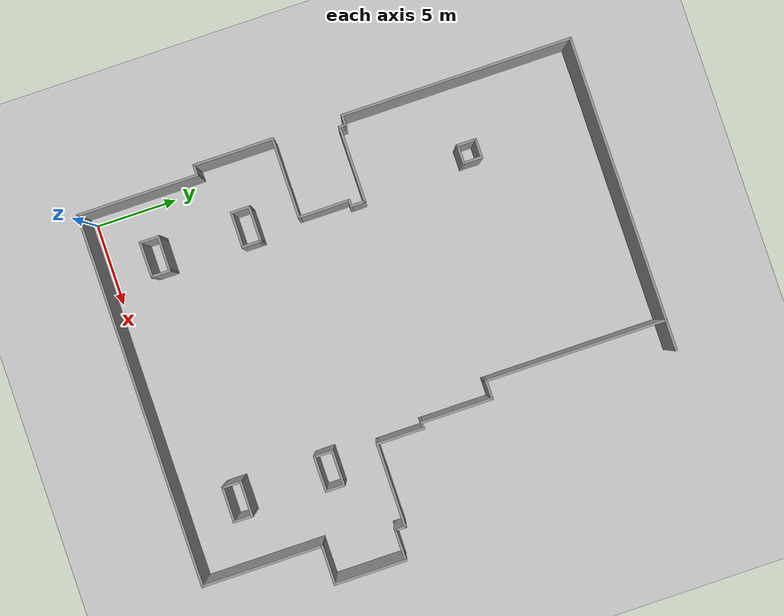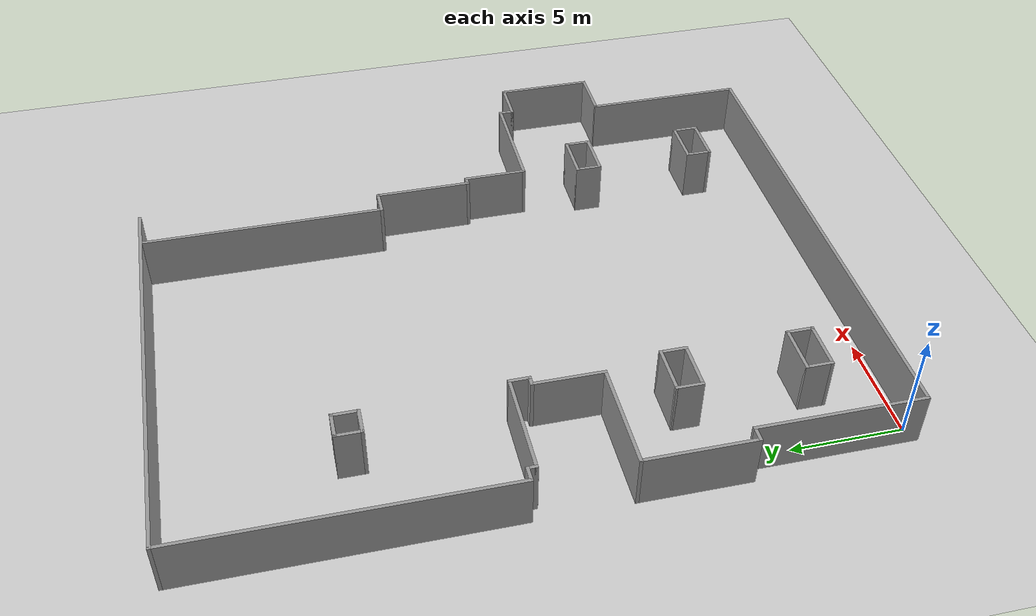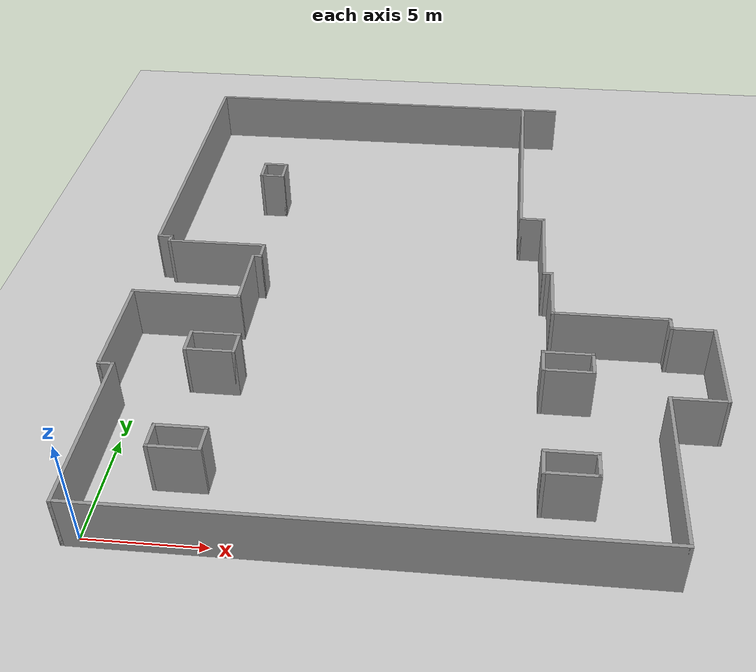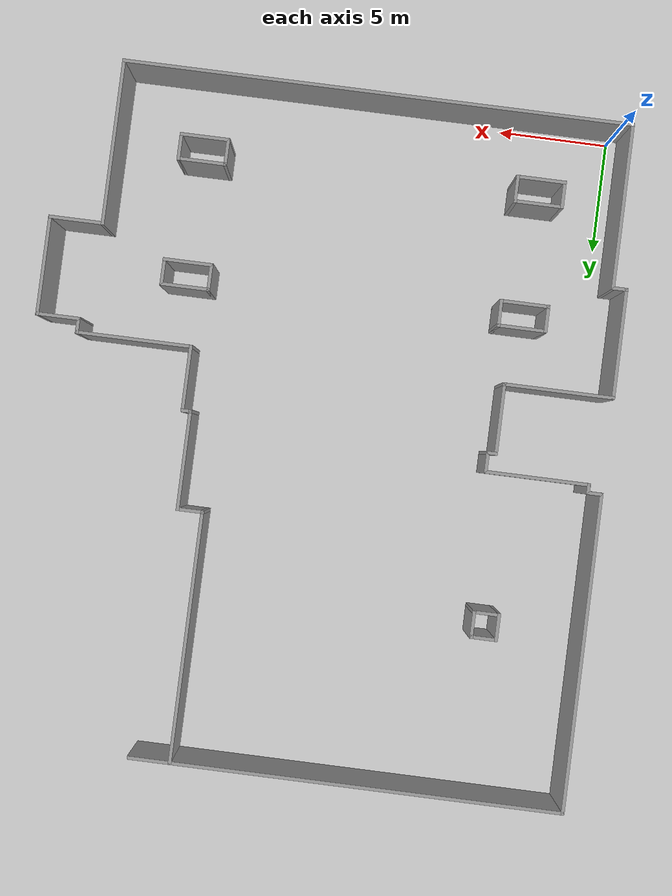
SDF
<sdf version="1.7">
 <world name="default">
  <light name="sun" type="directional">
   <pose>0 0 10 0 -0 0</pose>
   <diffuse>0.8 0.8 0.8 1</diffuse>
   <specular>0.2 0.2 0.2 1</specular>
   <attenuation>
    <range>1000</range>
    <constant>0.9</constant>
    <linear>0.01</linear>
    <quadratic>0.001</quadratic>
   </attenuation>
   <direction>-0.5 0.1 -0.9</direction>
   <spot><inner_angle>0</inner_angle><outer_angle>0</outer_angle><falloff>0</falloff></spot>
  </light>
  <model name="ground_plane">
   <pose>25 15 0 0 -0 0</pose>
   <static>1</static>
   <link name="link">
    <collision name="collision">
     <geometry><plane><normal>0 0 1</normal><size>100 100</size></plane></geometry>
     <surface>
      <contact><collide_bitmask>65535</collide_bitmask></contact>
      <friction><ode><mu>100</mu><mu2>50</mu2></ode></friction>
     </surface>
    </collision>
    <visual name="visual">
     <cast_shadows>0</cast_shadows>
     <geometry><plane><normal>0 0 1</normal><size>100 100</size></plane></geometry>
     <material>
      <script><uri>file://media/materials/scripts/gazebo.material</uri><name>Gazebo/Grey</name></script>
     </material>
    </visual>
   </link>
  </model>
  <gravity>0 0 -9.8</gravity>
  <magnetic_field>6e-06 2.3e-05 -4.2e-05</magnetic_field>
  <atmosphere type="adiabatic"/>
  <physics type="ode">
   <max_step_size>0.001</max_step_size>
   <real_time_factor>1</real_time_factor>
   <real_time_update_rate>1000</real_time_update_rate>
  </physics>
  <scene><ambient>0.4 0.4 0.4 1</ambient><background>0.7 0.7 0.7 1</background><shadows>1</shadows></scene>
  <spherical_coordinates>
   <surface_model>EARTH_WGS84</surface_model>
   <latitude_deg>0</latitude_deg>
   <longitude_deg>0</longitude_deg>
   <elevation>0</elevation>
   <heading_deg>0</heading_deg>
  </spherical_coordinates>
  <model name="hall">
   <pose>25 15 0 0 -0 0</pose>
   <link name="Wall_19">
    <collision name="Wall_19_Collision">
     <geometry><box><size>0.75 0.15 2.5</size></box></geometry>
     <pose>0 0 1.25 0 -0 0</pose>
    </collision>
    <visual name="Wall_19_Visual">
     <pose>0 0 1.25 0 -0 0</pose>
     <geometry><box><size>0.75 0.15 2.5</size></box></geometry>
     <material>
      <script><uri>file://media/materials/scripts/gazebo.material</uri><name>Gazebo/Grey</name></script>
      <ambient>1 1 1 1</ambient>
     </material>
     <meta><layer>0</layer></meta>
    </visual>
    <pose>-25.8583 1.19999 0 0 -0 0</pose>
   </link>
   <link name="Wall_22">
    <collision name="Wall_22_Collision">
     <geometry><box><size>0.5 0.15 2.5</size></box></geometry>
     <pose>0 0 1.25 0 -0 0</pose>
    </collision>
    <visual name="Wall_22_Visual">
     <pose>0 0 1.25 0 -0 0</pose>
     <geometry><box><size>0.5 0.15 2.5</size></box></geometry>
     <material>
      <script><uri>file://media/materials/scripts/gazebo.material</uri><name>Gazebo/Grey</name></script>
      <ambient>1 1 1 1</ambient>
     </material>
     <meta><layer>0</layer></meta>
    </visual>
    <pose>-25.5583 1.02499 0 0 -0 -1.5708</pose>
   </link>
   <link name="Wall_28">
    <collision name="Wall_28_Collision">
     <geometry><box><size>4.75 0.15 2.5</size></box></geometry>
     <pose>0 0 1.25 0 -0 0</pose>
    </collision>
    <visual name="Wall_28_Visual">
     <pose>0 0 1.25 0 -0 0</pose>
     <geometry><box><size>4.75 0.15 2.5</size></box></geometry>
     <material>
      <script><uri>file://media/materials/scripts/gazebo.material</uri><name>Gazebo/Grey</name></script>
      <ambient>1 1 1 1</ambient>
     </material>
     <meta><layer>0</layer></meta>
    </visual>
    <pose>-23.2583 0.849991 0 0 -0 0</pose>
   </link>
   <link name="Wall_29">
    <collision name="Wall_29_Collision">
     <geometry><box><size>1 0.15 2.5</size></box></geometry>
     <pose>0 0 1.25 0 -0 0</pose>
    </collision>
    <visual name="Wall_29_Visual">
     <pose>0 0 1.25 0 -0 0</pose>
     <geometry><box><size>1 0.15 2.5</size></box></geometry>
     <material>
      <script><uri>file://media/materials/scripts/gazebo.material</uri><name>Gazebo/Grey</name></script>
      <ambient>1 1 1 1</ambient>
     </material>
     <meta><layer>0</layer></meta>
    </visual>
    <pose>-20.9583 0.424992 0 0 -0 -1.5708</pose>
   </link>
   <link name="Wall_30">
    <collision name="Wall_30_Collision">
     <geometry><box><size>0.5 0.15 2.5</size></box></geometry>
     <pose>0 0 1.25 0 -0 0</pose>
    </collision>
    <visual name="Wall_30_Visual">
     <pose>0 0 1.25 0 -0 0</pose>
     <geometry><box><size>0.5 0.15 2.5</size></box></geometry>
     <material>
      <script><uri>file://media/materials/scripts/gazebo.material</uri><name>Gazebo/Grey</name></script>
      <ambient>1 1 1 1</ambient>
     </material>
     <meta><layer>0</layer></meta>
    </visual>
    <pose>-21.1333 -8e-06 0 0 -0 3.14159</pose>
   </link>
   <link name="Wall_32">
    <collision name="Wall_32_Collision">
     <geometry><box><size>3.25 0.15 2.5</size></box></geometry>
     <pose>0 0 1.25 0 -0 0</pose>
    </collision>
    <visual name="Wall_32_Visual">
     <pose>0 0 1.25 0 -0 0</pose>
     <geometry><box><size>3.25 0.15 2.5</size></box></geometry>
     <material>
      <script><uri>file://media/materials/scripts/gazebo.material</uri><name>Gazebo/Grey</name></script>
      <ambient>1 1 1 1</ambient>
     </material>
     <meta><layer>0</layer></meta>
    </visual>
    <pose>-21.3083 -1.55001 0 0 -0 -1.5708</pose>
   </link>
   <link name="Wall_33">
    <collision name="Wall_33_Collision">
     <geometry><box><size>5 0.15 2.5</size></box></geometry>
     <pose>0 0 1.25 0 -0 0</pose>
    </collision>
    <visual name="Wall_33_Visual">
     <pose>0 0 1.25 0 -0 0</pose>
     <geometry><box><size>5 0.15 2.5</size></box></geometry>
     <material>
      <script><uri>file://media/materials/scripts/gazebo.material</uri><name>Gazebo/Grey</name></script>
      <ambient>1 1 1 1</ambient>
     </material>
     <meta><layer>0</layer></meta>
    </visual>
    <pose>-23.7333 -3.10001 0 0 -0 3.14159</pose>
   </link>
   <link name="Wall_35">
    <collision name="Wall_35_Collision">
     <geometry><box><size>5 0.15 2.5</size></box></geometry>
     <pose>0 0 1.25 0 -0 0</pose>
    </collision>
    <visual name="Wall_35_Visual">
     <pose>0 0 1.25 0 -0 0</pose>
     <geometry><box><size>5 0.15 2.5</size></box></geometry>
     <material>
      <script><uri>file://media/materials/scripts/gazebo.material</uri><name>Gazebo/Grey</name></script>
      <ambient>1 1 1 1</ambient>
     </material>
     <meta><layer>0</layer></meta>
    </visual>
    <pose>-26.1583 -5.52501 0 0 -0 -1.5708</pose>
   </link>
   <link name="Wall_36">
    <collision name="Wall_36_Collision">
     <geometry><box><size>0.75 0.15 2.5</size></box></geometry>
     <pose>0 0 1.25 0 -0 0</pose>
    </collision>
    <visual name="Wall_36_Visual">
     <pose>0 0 1.25 0 -0 0</pose>
     <geometry><box><size>0.75 0.15 2.5</size></box></geometry>
     <material>
      <script><uri>file://media/materials/scripts/gazebo.material</uri><name>Gazebo/Grey</name></script>
      <ambient>1 1 1 1</ambient>
     </material>
     <meta><layer>0</layer></meta>
    </visual>
    <pose>-25.8583 -7.95001 0 0 -0 0</pose>
   </link>
   <link name="Wall_38">
    <collision name="Wall_38_Collision">
     <geometry><box><size>7.5 0.15 2.5</size></box></geometry>
     <pose>0 0 1.25 0 -0 0</pose>
    </collision>
    <visual name="Wall_38_Visual">
     <pose>0 0 1.25 0 -0 0</pose>
     <geometry><box><size>7.5 0.15 2.5</size></box></geometry>
     <material>
      <script><uri>file://media/materials/scripts/gazebo.material</uri><name>Gazebo/Grey</name></script>
      <ambient>1 1 1 1</ambient>
     </material>
     <meta><layer>0</layer></meta>
    </visual>
    <pose>-25.5583 -11.625 0 0 -0 -1.5708</pose>
   </link>
   <link name="Wall_40">
    <collision name="Wall_40_Collision">
     <geometry><box><size>23 0.15 2.5</size></box></geometry>
     <pose>0 0 1.25 0 -0 0</pose>
    </collision>
    <visual name="Wall_40_Visual">
     <pose>0 0 1.25 0 -0 0</pose>
     <geometry><box><size>23 0.15 2.5</size></box></geometry>
     <material>
      <script><uri>file://media/materials/scripts/gazebo.material</uri><name>Gazebo/Grey</name></script>
      <ambient>1 1 1 1</ambient>
     </material>
     <meta><layer>0</layer></meta>
    </visual>
    <pose>-14.1333 -15.3 0 0 -0 0</pose>
   </link>
   <link name="Wall_41">
    <collision name="Wall_41_Collision">
     <geometry><box><size>7.5 0.15 2.5</size></box></geometry>
     <pose>0 0 1.25 0 -0 0</pose>
    </collision>
    <visual name="Wall_41_Visual">
     <pose>0 0 1.25 0 -0 0</pose>
     <geometry><box><size>7.5 0.15 2.5</size></box></geometry>
     <material>
      <script><uri>file://media/materials/scripts/gazebo.material</uri><name>Gazebo/Grey</name></script>
      <ambient>1 1 1 1</ambient>
     </material>
     <meta><layer>0</layer></meta>
    </visual>
    <pose>-2.70828 -11.625 0 0 -0 1.5708</pose>
   </link>
   <link name="Wall_44">
    <collision name="Wall_44_Collision">
     <geometry><box><size>2.5 0.15 2.5</size></box></geometry>
     <pose>0 0 1.25 0 -0 0</pose>
    </collision>
    <visual name="Wall_44_Visual">
     <pose>0 0 1.25 0 -0 0</pose>
     <geometry><box><size>2.5 0.15 2.5</size></box></geometry>
     <material>
      <script><uri>file://media/materials/scripts/gazebo.material</uri><name>Gazebo/Grey</name></script>
      <ambient>1 1 1 1</ambient>
     </material>
     <meta><layer>0</layer></meta>
    </visual>
    <pose>-1.53328 -7.95001 0 0 -0 0</pose>
   </link>
   <link name="Wall_45">
    <collision name="Wall_45_Collision">
     <geometry><box><size>4.5 0.15 2.5</size></box></geometry>
     <pose>0 0 1.25 0 -0 0</pose>
    </collision>
    <visual name="Wall_45_Visual">
     <pose>0 0 1.25 0 -0 0</pose>
     <geometry><box><size>4.5 0.15 2.5</size></box></geometry>
     <material>
      <script><uri>file://media/materials/scripts/gazebo.material</uri><name>Gazebo/Grey</name></script>
      <ambient>1 1 1 1</ambient>
     </material>
     <meta><layer>0</layer></meta>
    </visual>
    <pose>-0.358276 -5.77501 0 0 -0 1.5708</pose>
   </link>
   <link name="Wall_46">
    <collision name="Wall_46_Collision">
     <geometry><box><size>2 0.15 2.5</size></box></geometry>
     <pose>0 0 1.25 0 -0 0</pose>
    </collision>
    <visual name="Wall_46_Visual">
     <pose>0 0 1.25 0 -0 0</pose>
     <geometry><box><size>2 0.15 2.5</size></box></geometry>
     <material>
      <script><uri>file://media/materials/scripts/gazebo.material</uri><name>Gazebo/Grey</name></script>
      <ambient>1 1 1 1</ambient>
     </material>
     <meta><layer>0</layer></meta>
    </visual>
    <pose>-1.28328 -3.60001 0 0 -0 3.14159</pose>
   </link>
   <link name="Wall_47">
    <collision name="Wall_47_Collision">
     <geometry><box><size>0.75 0.15 2.5</size></box></geometry>
     <pose>0 0 1.25 0 -0 0</pose>
    </collision>
    <visual name="Wall_47_Visual">
     <pose>0 0 1.25 0 -0 0</pose>
     <geometry><box><size>0.75 0.15 2.5</size></box></geometry>
     <material>
      <script><uri>file://media/materials/scripts/gazebo.material</uri><name>Gazebo/Grey</name></script>
      <ambient>1 1 1 1</ambient>
     </material>
     <meta><layer>0</layer></meta>
    </visual>
    <pose>-2.20828 -3.30001 0 0 -0 1.5708</pose>
   </link>
   <link name="Wall_48">
    <collision name="Wall_48_Collision">
     <geometry><box><size>5.25 0.15 2.5</size></box></geometry>
     <pose>0 0 1.25 0 -0 0</pose>
    </collision>
    <visual name="Wall_48_Visual">
     <pose>0 0 1.25 0 -0 0</pose>
     <geometry><box><size>5.25 0.15 2.5</size></box></geometry>
     <material>
      <script><uri>file://media/materials/scripts/gazebo.material</uri><name>Gazebo/Grey</name></script>
      <ambient>1 1 1 1</ambient>
     </material>
     <meta><layer>0</layer></meta>
    </visual>
    <pose>-4.75828 -3.00001 0 0 -0 3.14159</pose>
   </link>
   <link name="Wall_50">
    <collision name="Wall_50_Collision">
     <geometry><box><size>3 0.15 2.5</size></box></geometry>
     <pose>0 0 1.25 0 -0 0</pose>
    </collision>
    <visual name="Wall_50_Visual">
     <pose>0 0 1.25 0 -0 0</pose>
     <geometry><box><size>3 0.15 2.5</size></box></geometry>
     <material>
      <script><uri>file://media/materials/scripts/gazebo.material</uri><name>Gazebo/Grey</name></script>
      <ambient>1 1 1 1</ambient>
     </material>
     <meta><layer>0</layer></meta>
    </visual>
    <pose>-7.30828 -1.57501 0 0 -0 1.5708</pose>
   </link>
   <link name="Wall_51">
    <collision name="Wall_51_Collision">
     <geometry><box><size>0.5 0.15 2.5</size></box></geometry>
     <pose>0 0 1.25 0 -0 0</pose>
    </collision>
    <visual name="Wall_51_Visual">
     <pose>0 0 1.25 0 -0 0</pose>
     <geometry><box><size>0.5 0.15 2.5</size></box></geometry>
     <material>
      <script><uri>file://media/materials/scripts/gazebo.material</uri><name>Gazebo/Grey</name></script>
      <ambient>1 1 1 1</ambient>
     </material>
     <meta><layer>0</layer></meta>
    </visual>
    <pose>-7.48328 -0.150009 0 0 -0 3.14159</pose>
   </link>
   <link name="Wall_52">
    <collision name="Wall_52_Collision">
     <geometry><box><size>4.5 0.15 2.5</size></box></geometry>
     <pose>0 0 1.25 0 -0 0</pose>
    </collision>
    <visual name="Wall_52_Visual">
     <pose>0 0 1.25 0 -0 0</pose>
     <geometry><box><size>4.5 0.15 2.5</size></box></geometry>
     <material>
      <script><uri>file://media/materials/scripts/gazebo.material</uri><name>Gazebo/Grey</name></script>
      <ambient>1 1 1 1</ambient>
     </material>
     <meta><layer>0</layer></meta>
    </visual>
    <pose>-7.65828 2.02499 0 0 -0 1.5708</pose>
   </link>
   <link name="Wall_53">
    <collision name="Wall_53_Collision">
     <geometry><box><size>1.25 0.15 2.5</size></box></geometry>
     <pose>0 0 1.25 0 -0 0</pose>
    </collision>
    <visual name="Wall_53_Visual">
     <pose>0 0 1.25 0 -0 0</pose>
     <geometry><box><size>1.25 0.15 2.5</size></box></geometry>
     <material>
      <script><uri>file://media/materials/scripts/gazebo.material</uri><name>Gazebo/Grey</name></script>
      <ambient>1 1 1 1</ambient>
     </material>
     <meta><layer>0</layer></meta>
    </visual>
    <pose>-8.20828 4.19999 0 0 -0 3.14159</pose>
   </link>
   <link name="Wall_55">
    <collision name="Wall_55_Collision">
     <geometry><box><size>11.25 0.15 2.5</size></box></geometry>
     <pose>0 0 1.25 0 -0 0</pose>
    </collision>
    <visual name="Wall_55_Visual">
     <pose>0 0 1.25 0 -0 0</pose>
     <geometry><box><size>11.25 0.15 2.5</size></box></geometry>
     <material>
      <script><uri>file://media/materials/scripts/gazebo.material</uri><name>Gazebo/Grey</name></script>
      <ambient>1 1 1 1</ambient>
     </material>
     <meta><layer>0</layer></meta>
    </visual>
    <pose>-8.75828 9.74999 0 0 -0 1.5708</pose>
   </link>
   <link name="Wall_58">
    <collision name="Wall_58_Collision">
     <geometry><box><size>2.25 0.15 2.5</size></box></geometry>
     <pose>0 0 1.25 0 -0 0</pose>
    </collision>
    <visual name="Wall_58_Visual">
     <pose>0 0 1.25 0 -0 0</pose>
     <geometry><box><size>2.25 0.15 2.5</size></box></geometry>
     <material>
      <script><uri>file://media/materials/scripts/gazebo.material</uri><name>Gazebo/Grey</name></script>
      <ambient>1 1 1 1</ambient>
     </material>
     <meta><layer>0</layer></meta>
    </visual>
    <pose>-21.769 -5.66098 0 0 -0 0</pose>
   </link>
   <link name="Wall_6">
    <collision name="Wall_6_Collision">
     <geometry><box><size>19.3662 0.15 2.5</size></box></geometry>
     <pose>0 0 1.25 0 -0 0</pose>
    </collision>
    <visual name="Wall_6_Visual">
     <pose>0 0 1.25 0 -0 0</pose>
     <geometry><box><size>19.3662 0.15 2.5</size></box></geometry>
     <material>
      <script><uri>file://media/materials/scripts/gazebo.material</uri><name>Gazebo/Grey</name></script>
      <ambient>1 1 1 1</ambient>
     </material>
     <meta><layer>0</layer></meta>
    </visual>
    <pose>-16.5502 15.298 0 0 -0 -0.000212</pose>
   </link>
   <link name="Wall_60">
    <collision name="Wall_60_Collision">
     <geometry><box><size>1.25 0.15 2.5</size></box></geometry>
     <pose>0 0 1.25 0 -0 0</pose>
    </collision>
    <visual name="Wall_60_Visual">
     <pose>0 0 1.25 0 -0 0</pose>
     <geometry><box><size>1.25 0.15 2.5</size></box></geometry>
     <material>
      <script><uri>file://media/materials/scripts/gazebo.material</uri><name>Gazebo/Grey</name></script>
      <ambient>1 1 1 1</ambient>
     </material>
     <meta><layer>0</layer></meta>
    </visual>
    <pose>-22.819 -6.21098 0 0 -0 -1.5708</pose>
   </link>
   <link name="Wall_61">
    <collision name="Wall_61_Collision">
     <geometry><box><size>2.25 0.15 2.5</size></box></geometry>
     <pose>0 0 1.25 0 -0 0</pose>
    </collision>
    <visual name="Wall_61_Visual">
     <pose>0 0 1.25 0 -0 0</pose>
     <geometry><box><size>2.25 0.15 2.5</size></box></geometry>
     <material>
      <script><uri>file://media/materials/scripts/gazebo.material</uri><name>Gazebo/Grey</name></script>
      <ambient>1 1 1 1</ambient>
     </material>
     <meta><layer>0</layer></meta>
    </visual>
    <pose>-21.769 -6.76098 0 0 -0 0</pose>
   </link>
   <link name="Wall_62">
    <collision name="Wall_62_Collision">
     <geometry><box><size>1.25 0.15 2.5</size></box></geometry>
     <pose>0 0 1.25 0 -0 0</pose>
    </collision>
    <visual name="Wall_62_Visual">
     <pose>0 0 1.25 0 -0 0</pose>
     <geometry><box><size>1.25 0.15 2.5</size></box></geometry>
     <material>
      <script><uri>file://media/materials/scripts/gazebo.material</uri><name>Gazebo/Grey</name></script>
      <ambient>1 1 1 1</ambient>
     </material>
     <meta><layer>0</layer></meta>
    </visual>
    <pose>-20.719 -6.21098 0 0 -0 1.5708</pose>
   </link>
   <link name="Wall_64">
    <collision name="Wall_64_Collision">
     <geometry><box><size>2.25 0.15 2.5</size></box></geometry>
     <pose>0 0 1.25 0 -0 0</pose>
    </collision>
    <visual name="Wall_64_Visual">
     <pose>0 0 1.25 0 -0 0</pose>
     <geometry><box><size>2.25 0.15 2.5</size></box></geometry>
     <material>
      <script><uri>file://media/materials/scripts/gazebo.material</uri><name>Gazebo/Grey</name></script>
      <ambient>1 1 1 1</ambient>
     </material>
     <meta><layer>0</layer></meta>
    </visual>
    <pose>-21.8198 -11.2515 0 0 -0 0</pose>
   </link>
   <link name="Wall_65">
    <collision name="Wall_65_Collision">
     <geometry><box><size>1.25 0.15 2.5</size></box></geometry>
     <pose>0 0 1.25 0 -0 0</pose>
    </collision>
    <visual name="Wall_65_Visual">
     <pose>0 0 1.25 0 -0 0</pose>
     <geometry><box><size>1.25 0.15 2.5</size></box></geometry>
     <material>
      <script><uri>file://media/materials/scripts/gazebo.material</uri><name>Gazebo/Grey</name></script>
      <ambient>1 1 1 1</ambient>
     </material>
     <meta><layer>0</layer></meta>
    </visual>
    <pose>-20.7698 -11.8015 0 0 -0 -1.5708</pose>
   </link>
   <link name="Wall_66">
    <collision name="Wall_66_Collision">
     <geometry><box><size>2.25 0.15 2.5</size></box></geometry>
     <pose>0 0 1.25 0 -0 0</pose>
    </collision>
    <visual name="Wall_66_Visual">
     <pose>0 0 1.25 0 -0 0</pose>
     <geometry><box><size>2.25 0.15 2.5</size></box></geometry>
     <material>
      <script><uri>file://media/materials/scripts/gazebo.material</uri><name>Gazebo/Grey</name></script>
      <ambient>1 1 1 1</ambient>
     </material>
     <meta><layer>0</layer></meta>
    </visual>
    <pose>-21.8198 -12.3515 0 0 -0 3.14159</pose>
   </link>
   <link name="Wall_67">
    <collision name="Wall_67_Collision">
     <geometry><box><size>1.25 0.15 2.5</size></box></geometry>
     <pose>0 0 1.25 0 -0 0</pose>
    </collision>
    <visual name="Wall_67_Visual">
     <pose>0 0 1.25 0 -0 0</pose>
     <geometry><box><size>1.25 0.15 2.5</size></box></geometry>
     <material>
      <script><uri>file://media/materials/scripts/gazebo.material</uri><name>Gazebo/Grey</name></script>
      <ambient>1 1 1 1</ambient>
     </material>
     <meta><layer>0</layer></meta>
    </visual>
    <pose>-22.8698 -11.8015 0 0 -0 1.5708</pose>
   </link>
   <link name="Wall_69">
    <collision name="Wall_69_Collision">
     <geometry><box><size>2.25 0.15 2.5</size></box></geometry>
     <pose>0 0 1.25 0 -0 0</pose>
    </collision>
    <visual name="Wall_69_Visual">
     <pose>0 0 1.25 0 -0 0</pose>
     <geometry><box><size>2.25 0.15 2.5</size></box></geometry>
     <material>
      <script><uri>file://media/materials/scripts/gazebo.material</uri><name>Gazebo/Grey</name></script>
      <ambient>1 1 1 1</ambient>
     </material>
     <meta><layer>0</layer></meta>
    </visual>
    <pose>-6.72553 -11.2515 0 0 -0 0</pose>
   </link>
   <link name="Wall_70">
    <collision name="Wall_70_Collision">
     <geometry><box><size>1.25 0.15 2.5</size></box></geometry>
     <pose>0 0 1.25 0 -0 0</pose>
    </collision>
    <visual name="Wall_70_Visual">
     <pose>0 0 1.25 0 -0 0</pose>
     <geometry><box><size>1.25 0.15 2.5</size></box></geometry>
     <material>
      <script><uri>file://media/materials/scripts/gazebo.material</uri><name>Gazebo/Grey</name></script>
      <ambient>1 1 1 1</ambient>
     </material>
     <meta><layer>0</layer></meta>
    </visual>
    <pose>-5.67553 -11.8015 0 0 -0 -1.5708</pose>
   </link>
   <link name="Wall_71">
    <collision name="Wall_71_Collision">
     <geometry><box><size>2.25 0.15 2.5</size></box></geometry>
     <pose>0 0 1.25 0 -0 0</pose>
    </collision>
    <visual name="Wall_71_Visual">
     <pose>0 0 1.25 0 -0 0</pose>
     <geometry><box><size>2.25 0.15 2.5</size></box></geometry>
     <material>
      <script><uri>file://media/materials/scripts/gazebo.material</uri><name>Gazebo/Grey</name></script>
      <ambient>1 1 1 1</ambient>
     </material>
     <meta><layer>0</layer></meta>
    </visual>
    <pose>-6.72553 -12.3515 0 0 -0 3.14159</pose>
   </link>
   <link name="Wall_72">
    <collision name="Wall_72_Collision">
     <geometry><box><size>1.25 0.15 2.5</size></box></geometry>
     <pose>0 0 1.25 0 -0 0</pose>
    </collision>
    <visual name="Wall_72_Visual">
     <pose>0 0 1.25 0 -0 0</pose>
     <geometry><box><size>1.25 0.15 2.5</size></box></geometry>
     <material>
      <script><uri>file://media/materials/scripts/gazebo.material</uri><name>Gazebo/Grey</name></script>
      <ambient>1 1 1 1</ambient>
     </material>
     <meta><layer>0</layer></meta>
    </visual>
    <pose>-7.77553 -11.8015 0 0 -0 1.5708</pose>
   </link>
   <link name="Wall_74">
    <collision name="Wall_74_Collision">
     <geometry><box><size>2.25 0.15 2.5</size></box></geometry>
     <pose>0 0 1.25 0 -0 0</pose>
    </collision>
    <visual name="Wall_74_Visual">
     <pose>0 0 1.25 0 -0 0</pose>
     <geometry><box><size>2.25 0.15 2.5</size></box></geometry>
     <material>
      <script><uri>file://media/materials/scripts/gazebo.material</uri><name>Gazebo/Grey</name></script>
      <ambient>1 1 1 1</ambient>
     </material>
     <meta><layer>0</layer></meta>
    </visual>
    <pose>-6.70011 -5.61015 0 0 -0 0</pose>
   </link>
   <link name="Wall_75">
    <collision name="Wall_75_Collision">
     <geometry><box><size>1.25 0.15 2.5</size></box></geometry>
     <pose>0 0 1.25 0 -0 0</pose>
    </collision>
    <visual name="Wall_75_Visual">
     <pose>0 0 1.25 0 -0 0</pose>
     <geometry><box><size>1.25 0.15 2.5</size></box></geometry>
     <material>
      <script><uri>file://media/materials/scripts/gazebo.material</uri><name>Gazebo/Grey</name></script>
      <ambient>1 1 1 1</ambient>
     </material>
     <meta><layer>0</layer></meta>
    </visual>
    <pose>-5.65011 -6.16015 0 0 -0 -1.5708</pose>
   </link>
   <link name="Wall_76">
    <collision name="Wall_76_Collision">
     <geometry><box><size>2.25 0.15 2.5</size></box></geometry>
     <pose>0 0 1.25 0 -0 0</pose>
    </collision>
    <visual name="Wall_76_Visual">
     <pose>0 0 1.25 0 -0 0</pose>
     <geometry><box><size>2.25 0.15 2.5</size></box></geometry>
     <material>
      <script><uri>file://media/materials/scripts/gazebo.material</uri><name>Gazebo/Grey</name></script>
      <ambient>1 1 1 1</ambient>
     </material>
     <meta><layer>0</layer></meta>
    </visual>
    <pose>-6.70011 -6.71015 0 0 -0 3.14159</pose>
   </link>
   <link name="Wall_77">
    <collision name="Wall_77_Collision">
     <geometry><box><size>1.25 0.15 2.5</size></box></geometry>
     <pose>0 0 1.25 0 -0 0</pose>
    </collision>
    <visual name="Wall_77_Visual">
     <pose>0 0 1.25 0 -0 0</pose>
     <geometry><box><size>1.25 0.15 2.5</size></box></geometry>
     <material>
      <script><uri>file://media/materials/scripts/gazebo.material</uri><name>Gazebo/Grey</name></script>
      <ambient>1 1 1 1</ambient>
     </material>
     <meta><layer>0</layer></meta>
    </visual>
    <pose>-7.75012 -6.16015 0 0 -0 1.5708</pose>
   </link>
   <link name="Wall_79">
    <collision name="Wall_79_Collision">
     <geometry><box><size>1.25 0.15 2.5</size></box></geometry>
     <pose>0 0 1.25 0 -0 0</pose>
    </collision>
    <visual name="Wall_79_Visual">
     <pose>0 0 1.25 0 -0 0</pose>
     <geometry><box><size>1.25 0.15 2.5</size></box></geometry>
     <material>
      <script><uri>file://media/materials/scripts/gazebo.material</uri><name>Gazebo/Grey</name></script>
      <ambient>1 1 1 1</ambient>
     </material>
     <meta><layer>0</layer></meta>
    </visual>
    <pose>-21.7741 8.14344 0 0 -0 0</pose>
   </link>
   <link name="Wall_8">
    <collision name="Wall_8_Collision">
     <geometry><box><size>14.25 0.15 2.5</size></box></geometry>
     <pose>0 0 1.25 0 -0 0</pose>
    </collision>
    <visual name="Wall_8_Visual">
     <pose>0 0 1.25 0 -0 0</pose>
     <geometry><box><size>14.25 0.15 2.5</size></box></geometry>
     <material>
      <script><uri>file://media/materials/scripts/gazebo.material</uri><name>Gazebo/Grey</name></script>
      <ambient>1 1 1 1</ambient>
     </material>
     <meta><layer>0</layer></meta>
    </visual>
    <pose>-26.1583 8.24999 0 0 -0 -1.5708</pose>
   </link>
   <link name="Wall_80">
    <collision name="Wall_80_Collision">
     <geometry><box><size>1.25 0.15 2.5</size></box></geometry>
     <pose>0 0 1.25 0 -0 0</pose>
    </collision>
    <visual name="Wall_80_Visual">
     <pose>0 0 1.25 0 -0 0</pose>
     <geometry><box><size>1.25 0.15 2.5</size></box></geometry>
     <material>
      <script><uri>file://media/materials/scripts/gazebo.material</uri><name>Gazebo/Grey</name></script>
      <ambient>1 1 1 1</ambient>
     </material>
     <meta><layer>0</layer></meta>
    </visual>
    <pose>-21.2241 7.59345 0 0 -0 -1.5708</pose>
   </link>
   <link name="Wall_81">
    <collision name="Wall_81_Collision">
     <geometry><box><size>1.25 0.15 2.5</size></box></geometry>
     <pose>0 0 1.25 0 -0 0</pose>
    </collision>
    <visual name="Wall_81_Visual">
     <pose>0 0 1.25 0 -0 0</pose>
     <geometry><box><size>1.25 0.15 2.5</size></box></geometry>
     <material>
      <script><uri>file://media/materials/scripts/gazebo.material</uri><name>Gazebo/Grey</name></script>
      <ambient>1 1 1 1</ambient>
     </material>
     <meta><layer>0</layer></meta>
    </visual>
    <pose>-21.7741 7.04345 0 0 -0 3.14159</pose>
   </link>
   <link name="Wall_82">
    <collision name="Wall_82_Collision">
     <geometry><box><size>1.25 0.15 2.5</size></box></geometry>
     <pose>0 0 1.25 0 -0 0</pose>
    </collision>
    <visual name="Wall_82_Visual">
     <pose>0 0 1.25 0 -0 0</pose>
     <geometry><box><size>1.25 0.15 2.5</size></box></geometry>
     <material>
      <script><uri>file://media/materials/scripts/gazebo.material</uri><name>Gazebo/Grey</name></script>
      <ambient>1 1 1 1</ambient>
     </material>
     <meta><layer>0</layer></meta>
    </visual>
    <pose>-22.3241 7.59345 0 0 -0 1.5708</pose>
   </link>
   <static>1</static>
  </model>
 </world>
</sdf>
